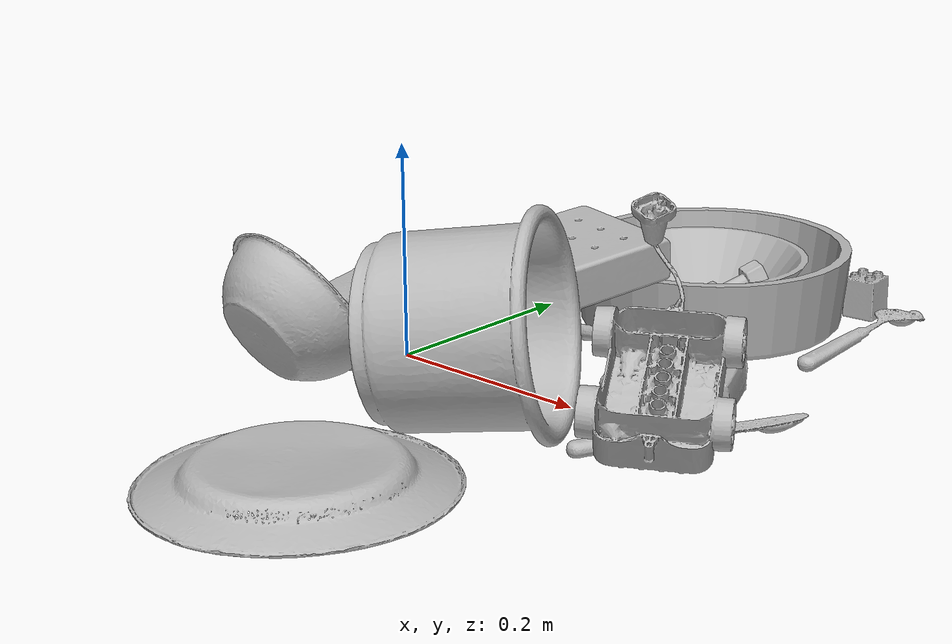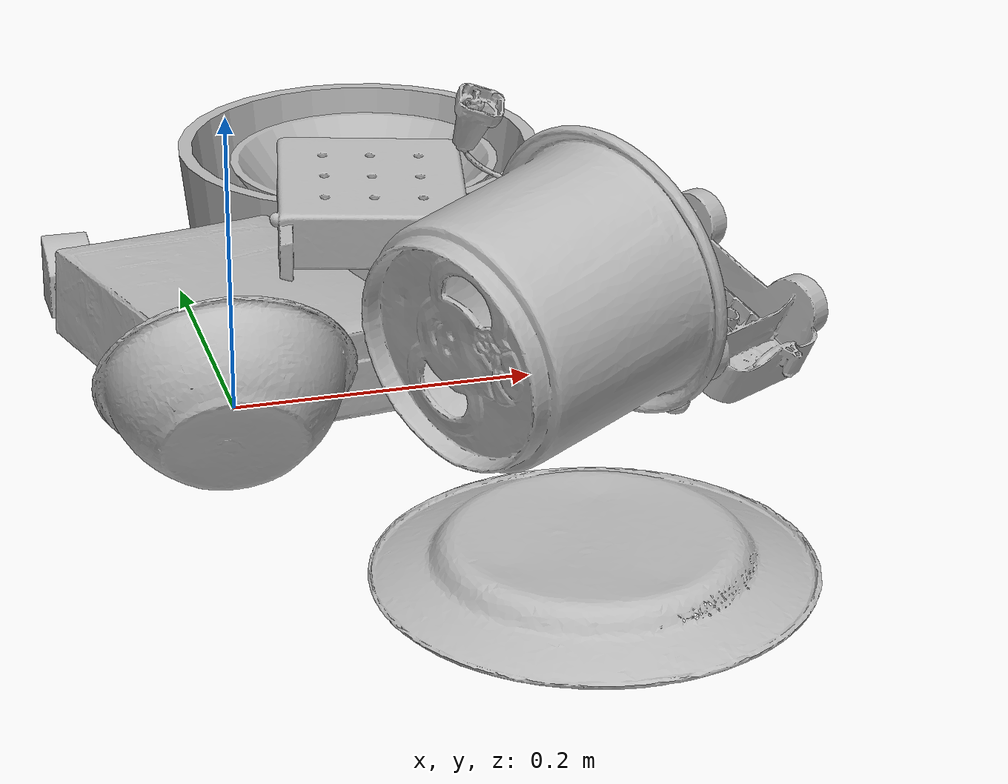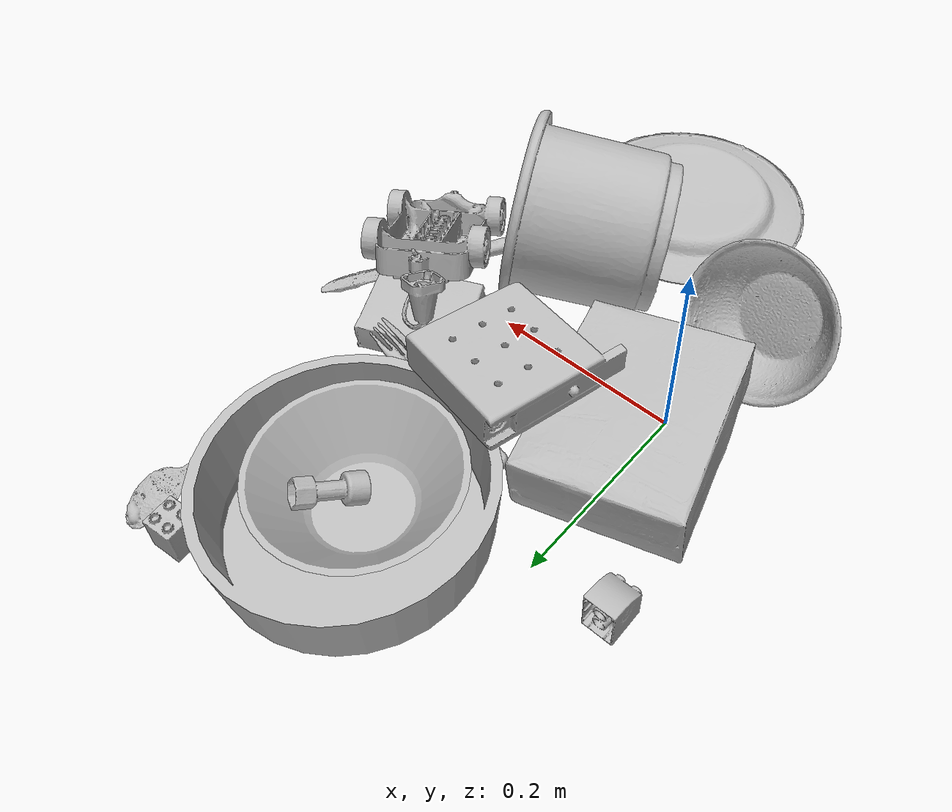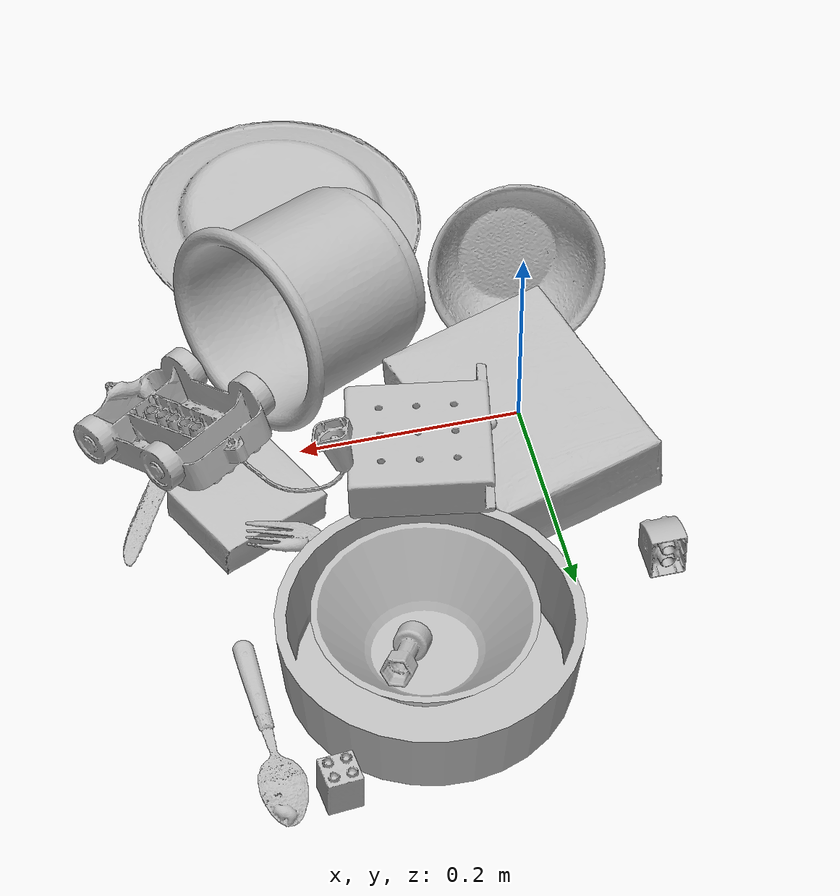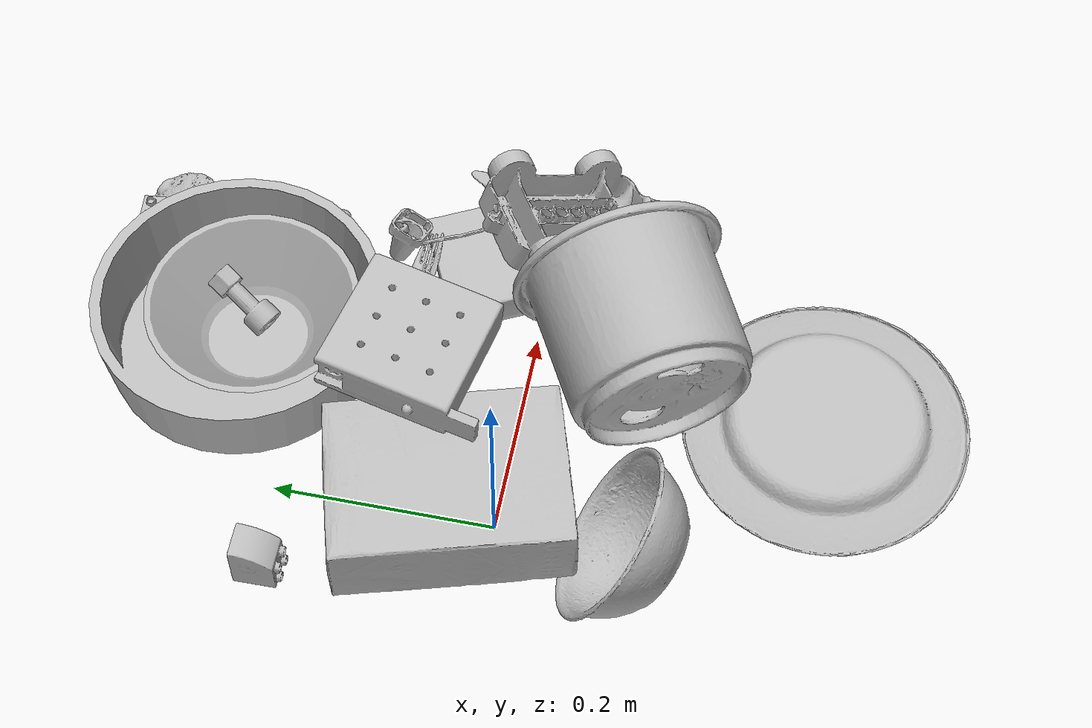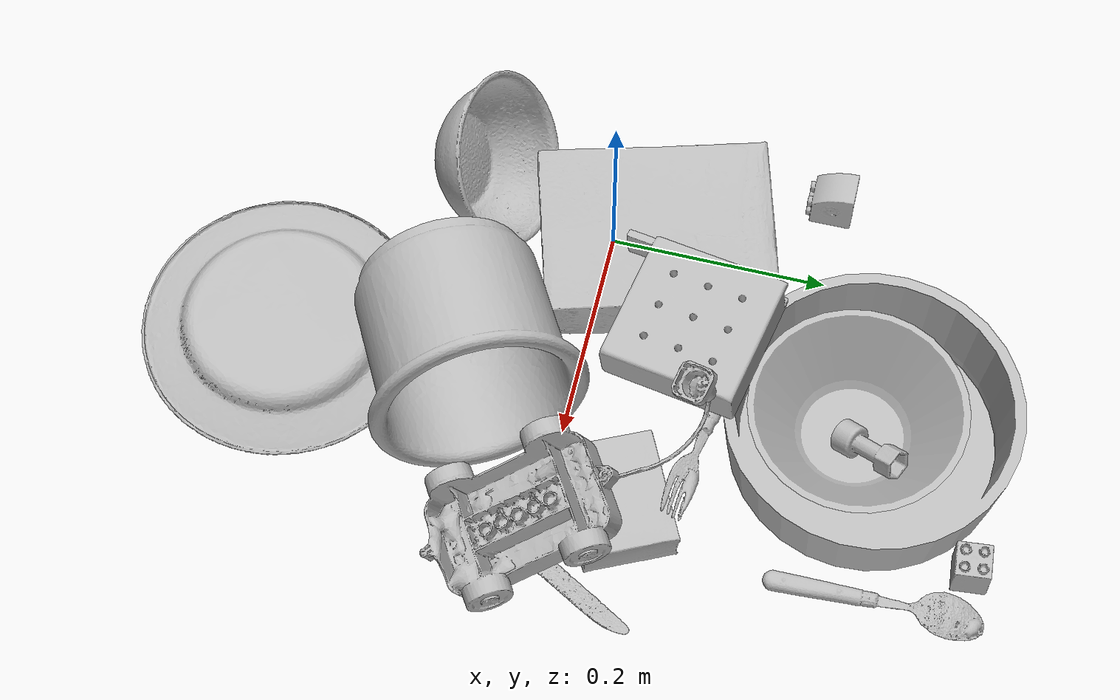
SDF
<sdf version="1.4">
  <world name="default">
    <light name="light1" type="point">
      <pose>0 0 1 0 0 0</pose>
      <diffuse>3 3 3 1</diffuse>
      <specular>3 3 3 1</specular>
    </light>
    <light name="light2" type="point">
      <pose>0 0.5 2 0 0 0</pose>
      <diffuse>1 1 1 1</diffuse>
      <specular>1 1 1 1</specular>
    </light>
    <light name="light3" type="point">
      <pose>0 0.5 2 0 0 0</pose>
      <diffuse>3 3 3 1</diffuse>
      <specular>3 3 3 1</specular>
    </light>
    <scene>
      <ambient>0.7 0.7 0.7</ambient>
    </scene>
    <model name="plate1">
      <link name="link_plate1">
        <collision name="default">
          <geometry>
            <mesh>
              <uri>model://plate/collision_meshes/collision.obj</uri>
              <scale>1.0 1.0 1.0</scale>
            </mesh>
          </geometry>
          <surface>
            <friction>
              <ode>
                <mu>0.5</mu>
                <mu2>0.5</mu2>
              </ode>
            </friction>
          <contact>
        <ode>
            <max_vel>0</max_vel>
            <min_depth>0.0001</min_depth>
            <kp>1e8</kp>
        </ode>
    </contact></surface>
        </collision>
        <visual name="default">
          <geometry>
            <mesh>
              <uri>model://plate/visual_meshes/visual.dae</uri>
              <scale>1.0 1.0 1.0</scale>
            </mesh>
          </geometry>
        </visual>
        <inertial>
          <mass>0.2518167495727539</mass>
          <pose>-0.000604460306931287 0.0002782583760563284 -0.001056198962032795 0.0022187362427659595 -0.003225514577586686 0.4526257716004426</pose>
          <inertia>
            <ixx>0.0011780038</ixx>
            <iyy>0.001166737</iyy>
            <izz>0.0023039998</izz>
            <ixy>0</ixy>
            <ixz>0</ixz>
            <iyz>0</iyz>
          </inertia>
        </inertial>
      </link>
      <pose>0.15729983150959015 -0.27347859740257263 0.013922855257987976 3.125992331242667 -0.007427431312256612 0.9890016762242784</pose>
    </model>
    <model name="plate2">
      <link name="link_plate2">
        <collision name="default">
          <geometry>
            <mesh>
              <uri>model://pan_tefal/collision_meshes/collision.obj</uri>
              <scale>1.0 1.0 1.0</scale>
            </mesh>
          </geometry>
          <surface>
            <friction>
              <ode>
                <mu>0.5</mu>
                <mu2>0.5</mu2>
              </ode>
            </friction>
          <contact>
        <ode>
            <max_vel>0</max_vel>
            <min_depth>0.0001</min_depth>
            <kp>1e8</kp>
        </ode>
    </contact></surface>
        </collision>
        <visual name="default">
          <geometry>
            <mesh>
              <uri>model://pan_tefal/visual_meshes/visual.dae</uri>
              <scale>1.0 1.0 1.0</scale>
            </mesh>
          </geometry>
        </visual>
        <inertial>
          <mass>1.062379002571106</mass>
          <pose>-0.00018001841090153903 3.2791107514640316e-05 -0.008514937944710255 0.0008190335190592257 -0.00033013878845789875 -0.3318630487039029</pose>
          <inertia>
            <ixx>0.0073335525</ixx>
            <iyy>0.007380832</iyy>
            <izz>0.013499655</izz>
            <ixy>0</ixy>
            <ixz>0</ixz>
            <iyz>0</iyz>
          </inertia>
        </inertial>
      </link>
      <pose>0.14694316685199738 0.26704761385917664 0.038050007075071335 -1.9684622673341381e-07 -2.2800126286254125e-07 2.890372391311725</pose>
    </model>
    <model name="bowl1">
      <link name="link_bowl1">
        <collision name="default">
          <geometry>
            <mesh>
              <uri>model://bowl/collision_meshes/collision.obj</uri>
              <scale>1.0 1.0 1.0</scale>
            </mesh>
          </geometry>
          <surface>
            <friction>
              <ode>
                <mu>0.5</mu>
                <mu2>0.5</mu2>
              </ode>
            </friction>
          <contact>
        <ode>
            <max_vel>0</max_vel>
            <min_depth>0.0001</min_depth>
            <kp>1e8</kp>
        </ode>
    </contact></surface>
        </collision>
        <visual name="default">
          <geometry>
            <mesh>
              <uri>model://bowl/visual_meshes/visual.dae</uri>
              <scale>1.0 1.0 1.0</scale>
            </mesh>
          </geometry>
        </visual>
        <inertial>
          <mass>0.06917417049407959</mass>
          <pose>0.00020445069822017103 -0.0010302119189873338 -0.0008042645640671253 -0.015764106225313407 0.014546789960746879 0.7140402093907182</pose>
          <inertia>
            <ixx>0.00015889853</ixx>
            <iyy>0.00015534814</iyy>
            <izz>0.000267322</izz>
            <ixy>0</ixy>
            <ixz>0</ixz>
            <iyz>0</iyz>
          </inertia>
        </inertial>
      </link>
      <pose>-0.025076571851968765 -0.12599696218967438 0.05906025692820549 0.8890451429624869 0.6773701131305419 2.5998181281472523</pose>
    </model>
    <model name="bowl2">
      <link name="link_bowl2">
        <collision name="default">
          <geometry>
            <mesh>
              <uri>model://bowl_a/collision_meshes/collision.obj</uri>
              <scale>1.0 1.0 1.0</scale>
            </mesh>
          </geometry>
          <surface>
            <friction>
              <ode>
                <mu>0.5</mu>
                <mu2>0.5</mu2>
              </ode>
            </friction>
          <contact>
        <ode>
            <max_vel>0</max_vel>
            <min_depth>0.0001</min_depth>
            <kp>1e8</kp>
        </ode>
    </contact></surface>
        </collision>
        <visual name="default">
          <geometry>
            <mesh>
              <uri>model://bowl_a/visual_meshes/visual.dae</uri>
              <scale>1.0 1.0 1.0</scale>
            </mesh>
          </geometry>
        </visual>
        <inertial>
          <mass>0.33581992983818054</mass>
          <pose>0.00027867587050423026 4.7312365495599806e-05 -0.0013765293406322598 -0.0009805275277335347 -0.0010938264345752996 -0.19124334191203107</pose>
          <inertia>
            <ixx>0.00095609494</ixx>
            <iyy>0.0009619646</iyy>
            <izz>0.0017004515</izz>
            <ixy>0</ixy>
            <ixz>0</ixz>
            <iyz>0</iyz>
          </inertia>
        </inertial>
      </link>
      <pose>0.14813731610774994 0.25408774614334106 0.03808807209134102 -0.0007157270997830279 -0.0017675135123023657 2.177663916701662</pose>
    </model>
    <model name="silverware1">
      <link name="link_silverware1">
        <collision name="default">
          <geometry>
            <mesh>
              <uri>model://spoon/collision_meshes/collision.obj</uri>
              <scale>1.0 1.0 1.0</scale>
            </mesh>
          </geometry>
          <surface>
            <friction>
              <ode>
                <mu>0.5</mu>
                <mu2>0.5</mu2>
              </ode>
            </friction>
          <contact>
        <ode>
            <max_vel>0</max_vel>
            <min_depth>0.0001</min_depth>
            <kp>1e8</kp>
        </ode>
    </contact></surface>
        </collision>
        <visual name="default">
          <geometry>
            <mesh>
              <uri>model://spoon/visual_meshes/visual.dae</uri>
              <scale>1.0 1.0 1.0</scale>
            </mesh>
          </geometry>
        </visual>
        <inertial>
          <mass>0.02635110728442669</mass>
          <pose>-0.005526317283511162 -0.0016034177970141172 -0.0007271651993505657 0.03521639754710896 -0.03906583271405073 0.0061506130160543454</pose>
          <inertia>
            <ixx>1.4656912e-06</ixx>
            <iyy>0.0001002651</iyy>
            <izz>0.00010098792</izz>
            <ixy>0</ixy>
            <ixz>0</ixz>
            <iyz>0</iyz>
          </inertia>
        </inertial>
      </link>
      <pose>0.2996614873409271 0.302141398191452 0.010133595205843449 3.10497815058336 -0.061977343147953765 1.577782397217062</pose>
    </model>
    <model name="box1">
      <link name="link_box1">
        <collision name="default">
          <geometry>
            <mesh>
              <uri>model://cracker_box/collision_meshes/collision.obj</uri>
              <scale>1.0 1.0 1.0</scale>
            </mesh>
          </geometry>
          <surface>
            <friction>
              <ode>
                <mu>0.5</mu>
                <mu2>0.5</mu2>
              </ode>
            </friction>
          <contact>
        <ode>
            <max_vel>0</max_vel>
            <min_depth>0.0001</min_depth>
            <kp>1e8</kp>
        </ode>
    </contact></surface>
        </collision>
        <visual name="default">
          <geometry>
            <mesh>
              <uri>model://cracker_box/visual_meshes/visual.dae</uri>
              <scale>1.0 1.0 1.0</scale>
            </mesh>
          </geometry>
        </visual>
        <inertial>
          <mass>1.9942995309829712</mass>
          <pose>0.0009464178583584726 0.00025434247800149024 -0.0017029533628374338 -0.00031620747948387436 -0.011106490532043566 0.0025467943028284904</pose>
          <inertia>
            <ixx>0.005072607</ixx>
            <iyy>0.008375872</iyy>
            <izz>0.011953138</izz>
            <ixy>0</ixy>
            <ixz>0</ixz>
            <iyz>0</iyz>
          </inertia>
        </inertial>
      </link>
      <pose>0.00829821452498436 0.0430583618581295 0.037611622363328934 -3.0889958457062976 -0.008660632332762722 1.8580522636805277</pose>
    </model>
    <model name="box2">
      <link name="link_box2">
        <collision name="default">
          <geometry>
            <mesh>
              <uri>model://pudding_box/collision_meshes/collision.obj</uri>
              <scale>1.0 1.0 1.0</scale>
            </mesh>
          </geometry>
          <surface>
            <friction>
              <ode>
                <mu>0.5</mu>
                <mu2>0.5</mu2>
              </ode>
            </friction>
          <contact>
        <ode>
            <max_vel>0</max_vel>
            <min_depth>0.0001</min_depth>
            <kp>1e8</kp>
        </ode>
    </contact></surface>
        </collision>
        <visual name="default">
          <geometry>
            <mesh>
              <uri>model://pudding_box/visual_meshes/visual.dae</uri>
              <scale>1.0 1.0 1.0</scale>
            </mesh>
          </geometry>
        </visual>
        <inertial>
          <mass>0.5201411247253418</mass>
          <pose>0.0004894821904599667 0.0008067885646596551 -0.0005188828217796981 0.00521310178321913 -0.006603799649863257 0.020079825157321304</pose>
          <inertia>
            <ixx>0.0005879929</ixx>
            <iyy>0.00039560578</iyy>
            <izz>0.00086832506</izz>
            <ixy>0</ixy>
            <ixz>0</ixz>
            <iyz>0</iyz>
          </inertia>
        </inertial>
      </link>
      <pose>0.26197484135627747 0.06347070634365082 0.019725803285837173 0.022348684264195236 -0.01139161364391008 -1.1175203868669594</pose>
    </model>
    <model name="cup1">
      <link name="link_cup1">
        <collision name="default">
          <geometry>
            <mesh>
              <uri>model://i_cups/collision_meshes/collision.obj</uri>
              <scale>2.0 2.0 2.0</scale>
            </mesh>
          </geometry>
          <surface>
            <friction>
              <ode>
                <mu>0.5</mu>
                <mu2>0.5</mu2>
              </ode>
            </friction>
          <contact>
        <ode>
            <max_vel>0</max_vel>
            <min_depth>0.0001</min_depth>
            <kp>1e8</kp>
        </ode>
    </contact></surface>
        </collision>
        <visual name="default">
          <geometry>
            <mesh>
              <uri>model://i_cups/visual_meshes/visual.dae</uri>
              <scale>2.0 2.0 2.0</scale>
            </mesh>
          </geometry>
        </visual>
        <inertial>
          <mass>0.946932315826416</mass>
          <pose>0.00022480011102743447 0.0003359477559570223 -0.0017158038681373 -0.02898277199923076 -0.03987335280003036 -0.34591530516328983</pose>
          <inertia>
            <ixx>0.005244167</ixx>
            <iyy>0.0052903723</iyy>
            <izz>0.005861205</izz>
            <ixy>0</ixy>
            <ixz>0</ixz>
            <iyz>0</iyz>
          </inertia>
        </inertial>
      </link>
      <pose>0.1711215227842331 -0.0987338051199913 0.08987609297037125 0.5668692544807356 1.4205323672868513 1.0745849415654936</pose>
    </model>
    <model name="silverware2">
      <link name="link_silverware2">
        <collision name="default">
          <geometry>
            <mesh>
              <uri>model://fork/collision_meshes/collision.obj</uri>
              <scale>1.0 1.0 1.0</scale>
            </mesh>
          </geometry>
          <surface>
            <friction>
              <ode>
                <mu>0.5</mu>
                <mu2>0.5</mu2>
              </ode>
            </friction>
          <contact>
        <ode>
            <max_vel>0</max_vel>
            <min_depth>0.0001</min_depth>
            <kp>1e8</kp>
        </ode>
    </contact></surface>
        </collision>
        <visual name="default">
          <geometry>
            <mesh>
              <uri>model://fork/visual_meshes/visual.dae</uri>
              <scale>1.0 1.0 1.0</scale>
            </mesh>
          </geometry>
        </visual>
        <inertial>
          <mass>0.03207480534911156</mass>
          <pose>-0.02957005240023136 0.00046588238910771906 0.0003218861820641905 -0.013551414501779666 -0.010977842682601763 0.014453906756127453</pose>
          <inertia>
            <ixx>1.1244033e-06</ixx>
            <iyy>8.373807e-05</iyy>
            <izz>8.424099e-05</izz>
            <ixy>0</ixy>
            <ixz>0</ixz>
            <iyz>0</iyz>
          </inertia>
        </inertial>
      </link>
      <pose>0.17802318930625916 0.12540706992149353 0.021310927346348763 -0.4161161753710094 -0.14710769297682505 -0.159470377176032</pose>
    </model>
    <model name="silverware3">
      <link name="link_silverware3">
        <collision name="default">
          <geometry>
            <mesh>
              <uri>model://knife/collision_meshes/collision.obj</uri>
              <scale>1.0 1.0 1.0</scale>
            </mesh>
          </geometry>
          <surface>
            <friction>
              <ode>
                <mu>0.5</mu>
                <mu2>0.5</mu2>
              </ode>
            </friction>
          <contact>
        <ode>
            <max_vel>0</max_vel>
            <min_depth>0.0001</min_depth>
            <kp>1e8</kp>
        </ode>
    </contact></surface>
        </collision>
        <visual name="default">
          <geometry>
            <mesh>
              <uri>model://knife/visual_meshes/visual.dae</uri>
              <scale>1.0 1.0 1.0</scale>
            </mesh>
          </geometry>
        </visual>
        <inertial>
          <mass>0.02260335348546505</mass>
          <pose>-0.023785259574651718 0.0015275129117071629 5.062025593360886e-05 0.073049853839256 0.017248417767033373 -0.0074098225522862896</pose>
          <inertia>
            <ixx>6.41575e-07</ixx>
            <iyy>8.6838445e-05</iyy>
            <izz>8.704508e-05</izz>
            <ixy>0</ixy>
            <ixz>0</ixz>
            <iyz>0</iyz>
          </inertia>
        </inertial>
      </link>
      <pose>0.32525789737701416 0.005777846090495586 0.007947782054543495 -0.016473642069037623 -0.014491595275112257 1.0482134537762997</pose>
    </model>
    <model name="toy1">
      <link name="link_toy1">
        <collision name="default">
          <geometry>
            <mesh>
              <uri>model://nine_hole_peg_test/collision_meshes/collision.obj</uri>
              <scale>1.0 1.0 1.0</scale>
            </mesh>
          </geometry>
          <surface>
            <friction>
              <ode>
                <mu>0.5</mu>
                <mu2>0.5</mu2>
              </ode>
            </friction>
          <contact>
        <ode>
            <max_vel>0</max_vel>
            <min_depth>0.0001</min_depth>
            <kp>1e8</kp>
        </ode>
    </contact></surface>
        </collision>
        <visual name="default">
          <geometry>
            <mesh>
              <uri>model://nine_hole_peg_test/visual_meshes/visual.dae</uri>
              <scale>1.0 1.0 1.0</scale>
            </mesh>
          </geometry>
        </visual>
        <inertial>
          <mass>0.3368244469165802</mass>
          <pose>-0.0046173869632184505 -0.009647615253925323 2.6460689696250483e-05 -0.001466679946039042 0.000719417968587533 -0.6342416610336568</pose>
          <inertia>
            <ixx>0.00052668044</ixx>
            <iyy>0.000491756</iyy>
            <izz>0.00092289934</izz>
            <ixy>0</ixy>
            <ixz>0</ixz>
            <iyz>0</iyz>
          </inertia>
        </inertial>
      </link>
      <pose>0.10878373682498932 0.08962356299161911 0.09368859231472015 -0.08075200910194057 -0.030976413788721582 2.9500404475405535</pose>
    </model>
    <model name="toy2">
      <link name="link_toy2">
        <collision name="default">
          <geometry>
            <mesh>
              <uri>model://c_toy_airplane/collision_meshes/collision.obj</uri>
              <scale>1.0 1.0 1.0</scale>
            </mesh>
          </geometry>
          <surface>
            <friction>
              <ode>
                <mu>0.5</mu>
                <mu2>0.5</mu2>
              </ode>
            </friction>
          <contact>
        <ode>
            <max_vel>0</max_vel>
            <min_depth>0.0001</min_depth>
            <kp>1e8</kp>
        </ode>
    </contact></surface>
        </collision>
        <visual name="default">
          <geometry>
            <mesh>
              <uri>model://c_toy_airplane/visual_meshes/visual.dae</uri>
              <scale>1.0 1.0 1.0</scale>
            </mesh>
          </geometry>
        </visual>
        <inertial>
          <mass>0.025849465280771255</mass>
          <pose>-0.000230242803809233 -4.4294804979472246e-07 -0.006080531980842352 -0.006193997552816779 -0.016797268968147806 0.7655666586292194</pose>
          <inertia>
            <ixx>1.1869546e-05</ixx>
            <iyy>1.1836047e-05</iyy>
            <izz>2.7867347e-06</izz>
            <ixy>0</ixy>
            <ixz>0</ixz>
            <iyz>0</iyz>
          </inertia>
        </inertial>
      </link>
      <pose>0.1694360375404358 0.2709043323993683 0.03588077425956726 -1.1178503415067111 -0.5667282611519167 -0.7612900477339655</pose>
    </model>
    <model name="toy3">
      <link name="link_toy3">
        <collision name="default">
          <geometry>
            <mesh>
              <uri>model://g_lego_duplo/collision_meshes/collision.obj</uri>
              <scale>1.0 1.0 1.0</scale>
            </mesh>
          </geometry>
          <surface>
            <friction>
              <ode>
                <mu>0.5</mu>
                <mu2>0.5</mu2>
              </ode>
            </friction>
          <contact>
        <ode>
            <max_vel>0</max_vel>
            <min_depth>0.0001</min_depth>
            <kp>1e8</kp>
        </ode>
    </contact></surface>
        </collision>
        <visual name="default">
          <geometry>
            <mesh>
              <uri>model://g_lego_duplo/visual_meshes/visual.dae</uri>
              <scale>1.0 1.0 1.0</scale>
            </mesh>
          </geometry>
        </visual>
        <inertial>
          <mass>0.44857048988342285</mass>
          <pose>-0.05004768818616867 0.0017554624937474728 0.0038806761149317026 0.010962989380518968 0.03810827633819491 -0.09653029550410545</pose>
          <inertia>
            <ixx>0.0006499838</ixx>
            <iyy>0.00196511</iyy>
            <izz>0.0024584262</izz>
            <ixy>0</ixy>
            <ixz>0</ixz>
            <iyz>0</iyz>
          </inertia>
        </inertial>
      </link>
      <pose>0.2762601673603058 0.0334223248064518 0.07653294503688812 -3.110248381710781 -0.40659174406379867 2.121929691618757</pose>
    </model>
    <model name="toy4">
      <link name="link_toy4">
        <collision name="default">
          <geometry>
            <mesh>
              <uri>model://b_lego_duplo/collision_meshes/collision.obj</uri>
              <scale>1.0 1.0 1.0</scale>
            </mesh>
          </geometry>
          <surface>
            <friction>
              <ode>
                <mu>0.5</mu>
                <mu2>0.5</mu2>
              </ode>
            </friction>
          <contact>
        <ode>
            <max_vel>0</max_vel>
            <min_depth>0.0001</min_depth>
            <kp>1e8</kp>
        </ode>
    </contact></surface>
        </collision>
        <visual name="default">
          <geometry>
            <mesh>
              <uri>model://b_lego_duplo/visual_meshes/visual.dae</uri>
              <scale>1.0 1.0 1.0</scale>
            </mesh>
          </geometry>
        </visual>
        <inertial>
          <mass>0.028142115101218224</mass>
          <pose>-0.00011053047637687996 -9.15253895072965e-06 0.0019294291269034147 -0.03749502345465157 -0.02635389323626884 0.4519044936865358</pose>
          <inertia>
            <ixx>5.759495e-06</ixx>
            <iyy>5.798213e-06</iyy>
            <izz>5.1315224e-06</izz>
            <ixy>0</ixy>
            <ixz>0</ixz>
            <iyz>0</iyz>
          </inertia>
        </inertial>
      </link>
      <pose>0.25120607018470764 0.37801244854927063 0.02181539125740528 9.831877152744714e-05 0.00012317775724796754 1.6666817567367687</pose>
    </model>
    <model name="toy5">
      <link name="link_toy5">
        <collision name="default">
          <geometry>
            <mesh>
              <uri>model://d_lego_duplo/collision_meshes/collision.obj</uri>
              <scale>1.0 1.0 1.0</scale>
            </mesh>
          </geometry>
          <surface>
            <friction>
              <ode>
                <mu>0.5</mu>
                <mu2>0.5</mu2>
              </ode>
            </friction>
          <contact>
        <ode>
            <max_vel>0</max_vel>
            <min_depth>0.0001</min_depth>
            <kp>1e8</kp>
        </ode>
    </contact></surface>
        </collision>
        <visual name="default">
          <geometry>
            <mesh>
              <uri>model://d_lego_duplo/visual_meshes/visual.dae</uri>
              <scale>1.0 1.0 1.0</scale>
            </mesh>
          </geometry>
        </visual>
        <inertial>
          <mass>0.03456217050552368</mass>
          <pose>0.00283056334592402 0.00016366186900995672 0.0008589798817411065 0.08010865489808279 -0.3835519084219494 0.001029683970252444</pose>
          <inertia>
            <ixx>6.6907255e-06</ixx>
            <iyy>9.495956e-06</iyy>
            <izz>9.1575175e-06</izz>
            <ixy>0</ixy>
            <ixz>0</ixz>
            <iyz>0</iyz>
          </inertia>
        </inertial>
      </link>
      <pose>-0.07958042621612549 0.19011656939983368 0.02419733628630638 1.9562231796035525 1.570733567912484 0.3908117523740317</pose>
    </model>
  <physics type="ode">
      <max_contacts>50</max_contacts>
      <ode>
        <solver>
          <type>quick</type>
          <iters>75</iters>
        </solver>
        <constraints>
          <contact_max_correcting_vel>0</contact_max_correcting_vel>
          <contact_surface_layer>0</contact_surface_layer>
        </constraints>
      </ode>
    </physics></world>
</sdf>
